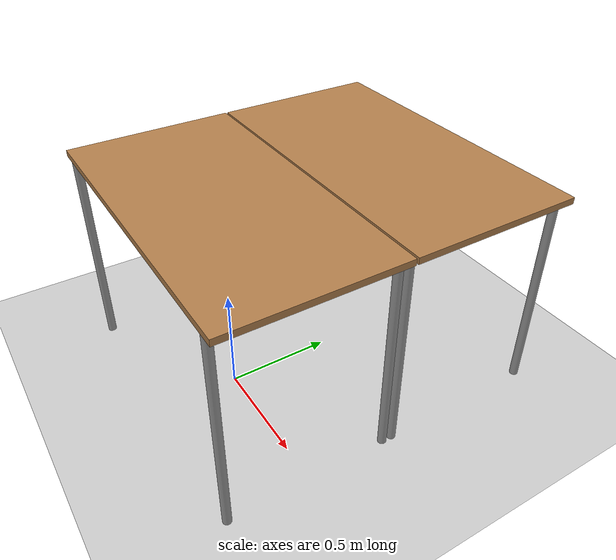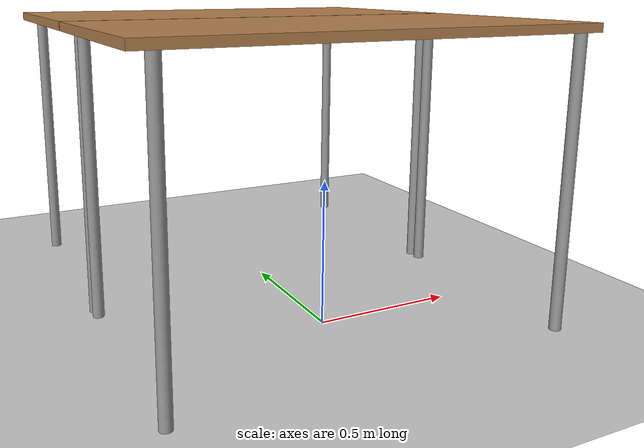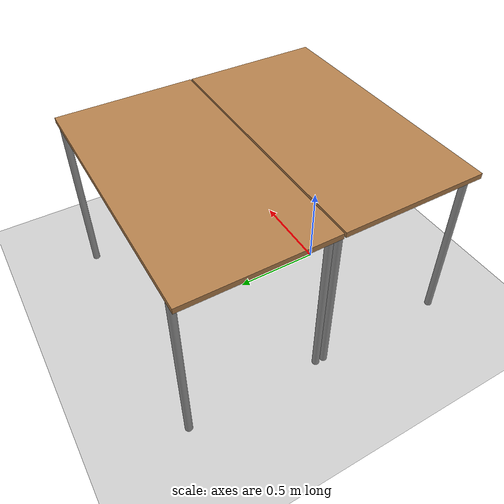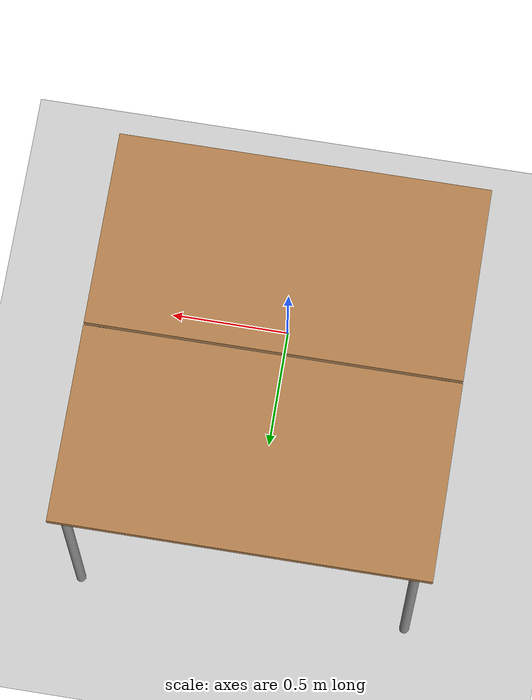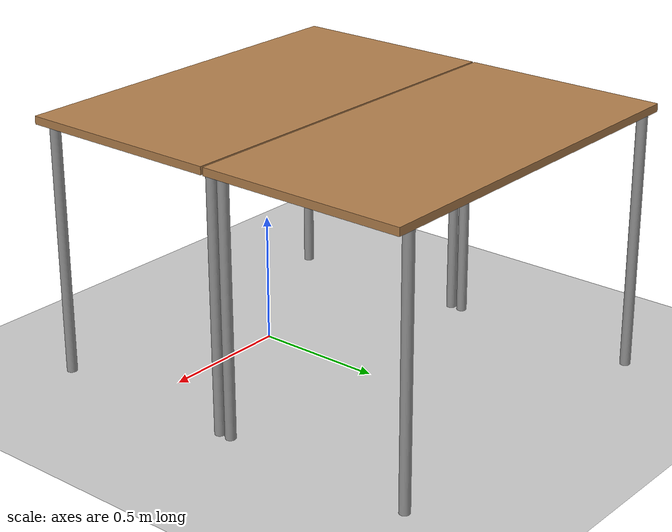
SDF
<sdf version="1.4">
 <world name="default">
  <include><uri>model://ground_plane</uri></include>
  <include><uri>model://sun</uri></include>
  <physics name="default_physics" default="0" type="ode">
   <max_step_size>0.01</max_step_size>
   <real_time_factor>1</real_time_factor>
   <real_time_update_rate>100</real_time_update_rate>
   <ode>
    <solver>
     <type>quick</type>
     <iters>50</iters>
     <sor>1.0</sor>
     <use_dynamic_moi_rescaling>false</use_dynamic_moi_rescaling>
    </solver>
   </ode>
  </physics>
  <include><uri>model://table</uri><name>table_1</name></include>
  <include><uri>model://table</uri><pose>0 0.81 0 0 0 0</pose><name>table_2</name></include>
 </world>
</sdf>

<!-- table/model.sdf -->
<sdf version="1.5">
  <model name="table">
    <static>true</static>
    <link name="link">
      <collision name="surface">
        <pose>0 0 1.0 0 0 0</pose>
        <geometry>
          <box>
            <size>1.5 0.8 0.03</size>
          </box>
        </geometry>
        <surface>
          <friction>
            <ode>
              <mu>0.6</mu>
              <mu2>0.6</mu2>
            </ode>
          </friction>
        </surface>
      </collision>
      <visual name="visual1">
        <pose>0 0 1.0 0 0 0</pose>
        <geometry>
          <box>
            <size>1.5 0.8 0.03</size>
          </box>
        </geometry>
        <material>
          <script>
            <uri>model://media/materials/scripts/gazebo.material</uri>
            <name>Gazebo/Wood</name>
          </script>
        </material>
      </visual>
      <collision name="front_left_leg">
        <pose>0.68 0.38 0.5 0 0 0</pose>
        <geometry>
          <cylinder>
            <radius>0.02</radius>
            <length>1.0</length>
          </cylinder>
        </geometry>
      </collision>
      <visual name="front_left_leg">
        <pose>0.68 0.38 0.5 0 0 0</pose>
        <geometry>
          <cylinder>
            <radius>0.02</radius>
            <length>1.0</length>
          </cylinder>
        </geometry>
        <material>
          <script>
            <uri>model://media/materials/scripts/gazebo.material</uri>
            <name>Gazebo/Grey</name>
          </script>
        </material>
      </visual>
      <collision name="front_right_leg">
        <pose>0.68 -0.38 0.5 0 0 0</pose>
        <geometry>
          <cylinder>
            <radius>0.02</radius>
            <length>1.0</length>
          </cylinder>
        </geometry>
      </collision>
      <visual name="front_right_leg">
        <pose>0.68 -0.38 0.5 0 0 0</pose>
        <geometry>
          <cylinder>
            <radius>0.02</radius>
            <length>1.0</length>
          </cylinder>
        </geometry>
        <material>
          <script>
            <uri>model://media/materials/scripts/gazebo.material</uri>
            <name>Gazebo/Grey</name>
          </script>
        </material>
      </visual>
      <collision name="back_right_leg">
        <pose>-0.68 -0.38 0.5 0 0 0</pose>
        <geometry>
          <cylinder>
            <radius>0.02</radius>
            <length>1.0</length>
          </cylinder>
        </geometry>
      </collision>
      <visual name="back_right_leg">
        <pose>-0.68 -0.38 0.5 0 0 0</pose>
        <geometry>
          <cylinder>
            <radius>0.02</radius>
            <length>1.0</length>
          </cylinder>
        </geometry>
        <material>
          <script>
            <uri>model://media/materials/scripts/gazebo.material</uri>
            <name>Gazebo/Grey</name>
          </script>
        </material>
      </visual>
      <collision name="back_left_leg">
        <pose>-0.68 0.38 0.5 0 0 0</pose>
        <geometry>
          <cylinder>
            <radius>0.02</radius>
            <length>1.0</length>
          </cylinder>
        </geometry>
      </collision>
      <visual name="back_left_leg">
        <pose>-0.68 0.38 0.5 0 0 0</pose>
        <geometry>
          <cylinder>
            <radius>0.02</radius>
            <length>1.0</length>
          </cylinder>
        </geometry>
        <material>
          <script>
            <uri>model://media/materials/scripts/gazebo.material</uri>
            <name>Gazebo/Grey</name>
          </script>
        </material>
      </visual>
    </link>
  </model>
</sdf>
